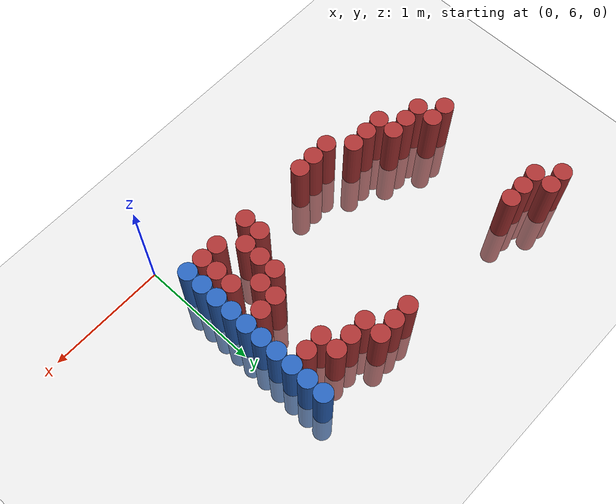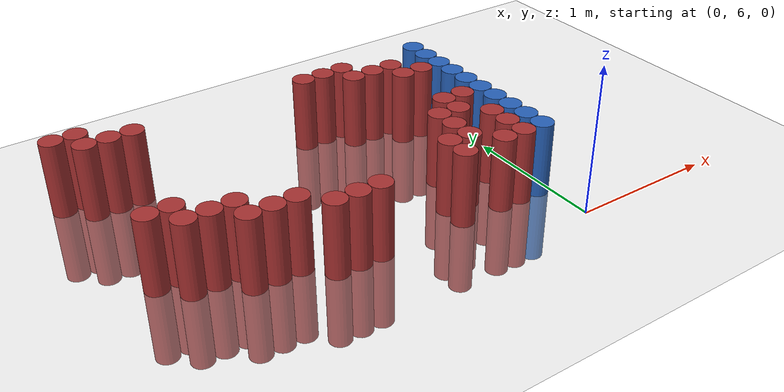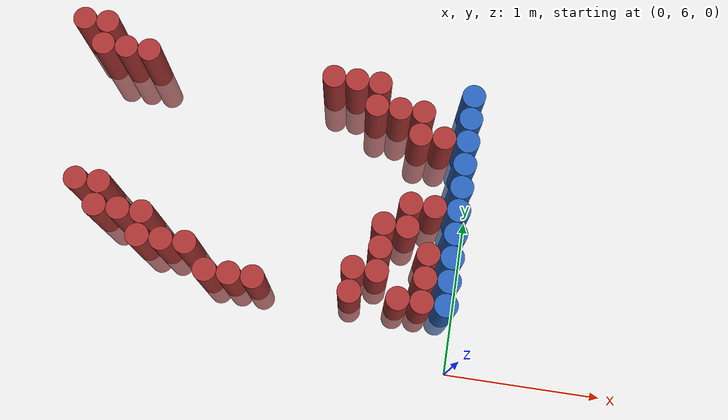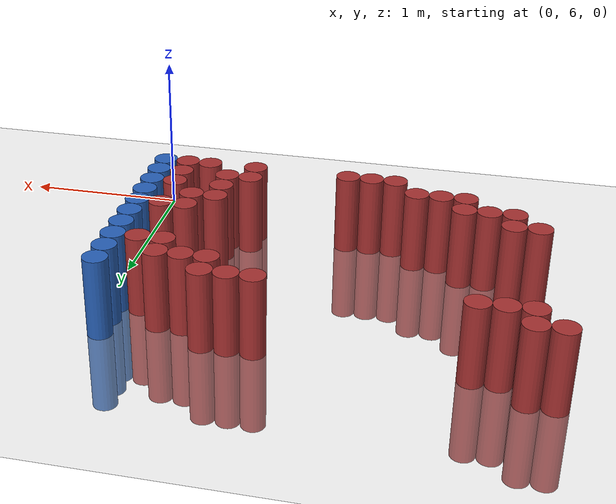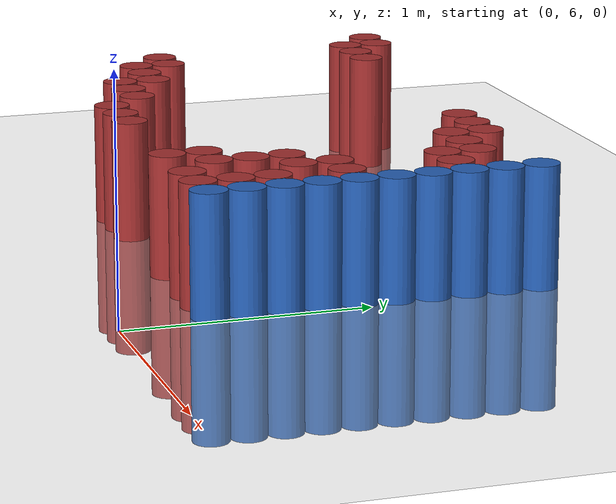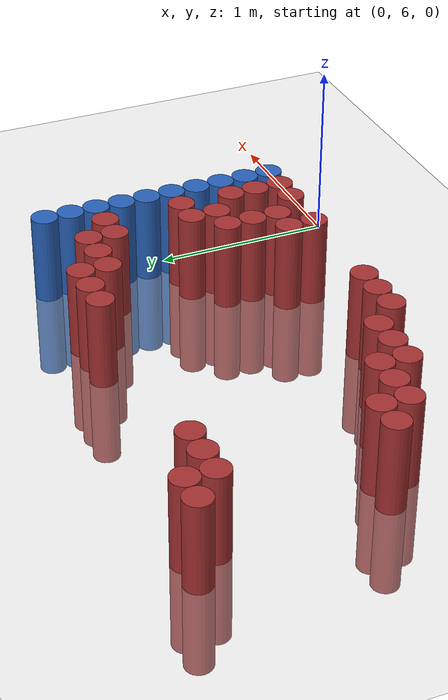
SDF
<sdf version="1.6">
 <world name="default">
  <model name="ground_plane">
   <static>1</static>
   <link name="link">
    <collision name="collision">
     <geometry><plane><normal>0 0 1</normal><size>100 100</size></plane></geometry>
     <surface><friction><ode><mu>100</mu><mu2>50</mu2></ode></friction></surface>
    </collision>
    <visual name="visual">
     <cast_shadows>0</cast_shadows>
     <geometry><plane><normal>0 0 1</normal><size>100 100</size></plane></geometry>
     <material>
      <script><uri>file://media/materials/scripts/gazebo.material</uri><name>Gazebo/Grey</name></script>
     </material>
    </visual>
   </link>
  </model>
  <model name="unit_cylinder_158">
   <static>1</static>
   <pose>-2.625000 7.875000 0.000000 0.000000 0.000000 0.000000</pose>
   <link name="link">
    <inertial>
     <mass>1</mass>
     <inertia><ixx>0.145833</ixx><ixy>0</ixy><ixz>0</ixz><iyy>0.145833</iyy><iyz>0</iyz><izz>0.125</izz></inertia>
    </inertial>
    <collision name="collision">
     <geometry><cylinder><radius>0.075000</radius><length>1</length></cylinder></geometry>
    </collision>
    <visual name="visual">
     <geometry><cylinder><radius>0.075000</radius><length>1</length></cylinder></geometry>
     <material>
      <ambient>0.648000 0.192000 0.192000 1</ambient>
      <diffuse>0.648000 0.192000 0.192000 1</diffuse>
     </material>
     <material>
      <script><name>Gazebo/Grey</name><uri>file://media/materials/scripts/gazebo.material</uri></script>
     </material>
    </visual>
   </link>
  </model>
  <model name="unit_cylinder_159">
   <static>1</static>
   <pose>-2.475000 6.825000 0.000000 0.000000 0.000000 0.000000</pose>
   <link name="link">
    <inertial>
     <mass>1</mass>
     <inertia><ixx>0.145833</ixx><ixy>0</ixy><ixz>0</ixz><iyy>0.145833</iyy><iyz>0</iyz><izz>0.125</izz></inertia>
    </inertial>
    <collision name="collision">
     <geometry><cylinder><radius>0.075000</radius><length>1</length></cylinder></geometry>
    </collision>
    <visual name="visual">
     <geometry><cylinder><radius>0.075000</radius><length>1</length></cylinder></geometry>
     <material>
      <ambient>0.648000 0.192000 0.192000 1</ambient>
      <diffuse>0.648000 0.192000 0.192000 1</diffuse>
     </material>
     <material>
      <script><name>Gazebo/Grey</name><uri>file://media/materials/scripts/gazebo.material</uri></script>
     </material>
    </visual>
   </link>
  </model>
  <model name="unit_cylinder_160">
   <static>1</static>
   <pose>-2.475000 7.725000 0.000000 0.000000 0.000000 0.000000</pose>
   <link name="link">
    <inertial>
     <mass>1</mass>
     <inertia><ixx>0.145833</ixx><ixy>0</ixy><ixz>0</ixz><iyy>0.145833</iyy><iyz>0</iyz><izz>0.125</izz></inertia>
    </inertial>
    <collision name="collision">
     <geometry><cylinder><radius>0.075000</radius><length>1</length></cylinder></geometry>
    </collision>
    <visual name="visual">
     <geometry><cylinder><radius>0.075000</radius><length>1</length></cylinder></geometry>
     <material>
      <ambient>0.648000 0.192000 0.192000 1</ambient>
      <diffuse>0.648000 0.192000 0.192000 1</diffuse>
     </material>
     <material>
      <script><name>Gazebo/Grey</name><uri>file://media/materials/scripts/gazebo.material</uri></script>
     </material>
    </visual>
   </link>
  </model>
  <model name="unit_cylinder_161">
   <static>1</static>
   <pose>-2.475000 7.875000 0.000000 0.000000 0.000000 0.000000</pose>
   <link name="link">
    <inertial>
     <mass>1</mass>
     <inertia><ixx>0.145833</ixx><ixy>0</ixy><ixz>0</ixz><iyy>0.145833</iyy><iyz>0</iyz><izz>0.125</izz></inertia>
    </inertial>
    <collision name="collision">
     <geometry><cylinder><radius>0.075000</radius><length>1</length></cylinder></geometry>
    </collision>
    <visual name="visual">
     <geometry><cylinder><radius>0.075000</radius><length>1</length></cylinder></geometry>
     <material>
      <ambient>0.648000 0.192000 0.192000 1</ambient>
      <diffuse>0.648000 0.192000 0.192000 1</diffuse>
     </material>
     <material>
      <script><name>Gazebo/Grey</name><uri>file://media/materials/scripts/gazebo.material</uri></script>
     </material>
    </visual>
   </link>
  </model>
  <model name="unit_cylinder_162">
   <static>1</static>
   <pose>-2.325000 6.675000 0.000000 0.000000 0.000000 0.000000</pose>
   <link name="link">
    <inertial>
     <mass>1</mass>
     <inertia><ixx>0.145833</ixx><ixy>0</ixy><ixz>0</ixz><iyy>0.145833</iyy><iyz>0</iyz><izz>0.125</izz></inertia>
    </inertial>
    <collision name="collision">
     <geometry><cylinder><radius>0.075000</radius><length>1</length></cylinder></geometry>
    </collision>
    <visual name="visual">
     <geometry><cylinder><radius>0.075000</radius><length>1</length></cylinder></geometry>
     <material>
      <ambient>0.648000 0.192000 0.192000 1</ambient>
      <diffuse>0.648000 0.192000 0.192000 1</diffuse>
     </material>
     <material>
      <script><name>Gazebo/Grey</name><uri>file://media/materials/scripts/gazebo.material</uri></script>
     </material>
    </visual>
   </link>
  </model>
  <model name="unit_cylinder_163">
   <static>1</static>
   <pose>-2.325000 6.825000 0.000000 0.000000 0.000000 0.000000</pose>
   <link name="link">
    <inertial>
     <mass>1</mass>
     <inertia><ixx>0.145833</ixx><ixy>0</ixy><ixz>0</ixz><iyy>0.145833</iyy><iyz>0</iyz><izz>0.125</izz></inertia>
    </inertial>
    <collision name="collision">
     <geometry><cylinder><radius>0.075000</radius><length>1</length></cylinder></geometry>
    </collision>
    <visual name="visual">
     <geometry><cylinder><radius>0.075000</radius><length>1</length></cylinder></geometry>
     <material>
      <ambient>0.648000 0.192000 0.192000 1</ambient>
      <diffuse>0.648000 0.192000 0.192000 1</diffuse>
     </material>
     <material>
      <script><name>Gazebo/Grey</name><uri>file://media/materials/scripts/gazebo.material</uri></script>
     </material>
    </visual>
   </link>
  </model>
  <model name="unit_cylinder_164">
   <static>1</static>
   <pose>-2.325000 7.725000 0.000000 0.000000 0.000000 0.000000</pose>
   <link name="link">
    <inertial>
     <mass>1</mass>
     <inertia><ixx>0.145833</ixx><ixy>0</ixy><ixz>0</ixz><iyy>0.145833</iyy><iyz>0</iyz><izz>0.125</izz></inertia>
    </inertial>
    <collision name="collision">
     <geometry><cylinder><radius>0.075000</radius><length>1</length></cylinder></geometry>
    </collision>
    <visual name="visual">
     <geometry><cylinder><radius>0.075000</radius><length>1</length></cylinder></geometry>
     <material>
      <ambient>0.648000 0.192000 0.192000 1</ambient>
      <diffuse>0.648000 0.192000 0.192000 1</diffuse>
     </material>
     <material>
      <script><name>Gazebo/Grey</name><uri>file://media/materials/scripts/gazebo.material</uri></script>
     </material>
    </visual>
   </link>
  </model>
  <model name="unit_cylinder_165">
   <static>1</static>
   <pose>-2.175000 6.675000 0.000000 0.000000 0.000000 0.000000</pose>
   <link name="link">
    <inertial>
     <mass>1</mass>
     <inertia><ixx>0.145833</ixx><ixy>0</ixy><ixz>0</ixz><iyy>0.145833</iyy><iyz>0</iyz><izz>0.125</izz></inertia>
    </inertial>
    <collision name="collision">
     <geometry><cylinder><radius>0.075000</radius><length>1</length></cylinder></geometry>
    </collision>
    <visual name="visual">
     <geometry><cylinder><radius>0.075000</radius><length>1</length></cylinder></geometry>
     <material>
      <ambient>0.648000 0.192000 0.192000 1</ambient>
      <diffuse>0.648000 0.192000 0.192000 1</diffuse>
     </material>
     <material>
      <script><name>Gazebo/Grey</name><uri>file://media/materials/scripts/gazebo.material</uri></script>
     </material>
    </visual>
   </link>
  </model>
  <model name="unit_cylinder_166">
   <static>1</static>
   <pose>-2.175000 7.725000 0.000000 0.000000 0.000000 0.000000</pose>
   <link name="link">
    <inertial>
     <mass>1</mass>
     <inertia><ixx>0.145833</ixx><ixy>0</ixy><ixz>0</ixz><iyy>0.145833</iyy><iyz>0</iyz><izz>0.125</izz></inertia>
    </inertial>
    <collision name="collision">
     <geometry><cylinder><radius>0.075000</radius><length>1</length></cylinder></geometry>
    </collision>
    <visual name="visual">
     <geometry><cylinder><radius>0.075000</radius><length>1</length></cylinder></geometry>
     <material>
      <ambient>0.648000 0.192000 0.192000 1</ambient>
      <diffuse>0.648000 0.192000 0.192000 1</diffuse>
     </material>
     <material>
      <script><name>Gazebo/Grey</name><uri>file://media/materials/scripts/gazebo.material</uri></script>
     </material>
    </visual>
   </link>
  </model>
  <model name="unit_cylinder_169">
   <static>1</static>
   <pose>-2.025000 6.525000 0.000000 0.000000 0.000000 0.000000</pose>
   <link name="link">
    <inertial>
     <mass>1</mass>
     <inertia><ixx>0.145833</ixx><ixy>0</ixy><ixz>0</ixz><iyy>0.145833</iyy><iyz>0</iyz><izz>0.125</izz></inertia>
    </inertial>
    <collision name="collision">
     <geometry><cylinder><radius>0.075000</radius><length>1</length></cylinder></geometry>
    </collision>
    <visual name="visual">
     <geometry><cylinder><radius>0.075000</radius><length>1</length></cylinder></geometry>
     <material>
      <ambient>0.648000 0.192000 0.192000 1</ambient>
      <diffuse>0.648000 0.192000 0.192000 1</diffuse>
     </material>
     <material>
      <script><name>Gazebo/Grey</name><uri>file://media/materials/scripts/gazebo.material</uri></script>
     </material>
    </visual>
   </link>
  </model>
  <model name="unit_cylinder_170">
   <static>1</static>
   <pose>-2.025000 6.675000 0.000000 0.000000 0.000000 0.000000</pose>
   <link name="link">
    <inertial>
     <mass>1</mass>
     <inertia><ixx>0.145833</ixx><ixy>0</ixy><ixz>0</ixz><iyy>0.145833</iyy><iyz>0</iyz><izz>0.125</izz></inertia>
    </inertial>
    <collision name="collision">
     <geometry><cylinder><radius>0.075000</radius><length>1</length></cylinder></geometry>
    </collision>
    <visual name="visual">
     <geometry><cylinder><radius>0.075000</radius><length>1</length></cylinder></geometry>
     <material>
      <ambient>0.648000 0.192000 0.192000 1</ambient>
      <diffuse>0.648000 0.192000 0.192000 1</diffuse>
     </material>
     <material>
      <script><name>Gazebo/Grey</name><uri>file://media/materials/scripts/gazebo.material</uri></script>
     </material>
    </visual>
   </link>
  </model>
  <model name="unit_cylinder_174">
   <static>1</static>
   <pose>-1.875000 6.525000 0.000000 0.000000 0.000000 0.000000</pose>
   <link name="link">
    <inertial>
     <mass>1</mass>
     <inertia><ixx>0.145833</ixx><ixy>0</ixy><ixz>0</ixz><iyy>0.145833</iyy><iyz>0</iyz><izz>0.125</izz></inertia>
    </inertial>
    <collision name="collision">
     <geometry><cylinder><radius>0.075000</radius><length>1</length></cylinder></geometry>
    </collision>
    <visual name="visual">
     <geometry><cylinder><radius>0.075000</radius><length>1</length></cylinder></geometry>
     <material>
      <ambient>0.648000 0.192000 0.192000 1</ambient>
      <diffuse>0.648000 0.192000 0.192000 1</diffuse>
     </material>
     <material>
      <script><name>Gazebo/Grey</name><uri>file://media/materials/scripts/gazebo.material</uri></script>
     </material>
    </visual>
   </link>
  </model>
  <model name="unit_cylinder_180">
   <static>1</static>
   <pose>-1.725000 6.525000 0.000000 0.000000 0.000000 0.000000</pose>
   <link name="link">
    <inertial>
     <mass>1</mass>
     <inertia><ixx>0.145833</ixx><ixy>0</ixy><ixz>0</ixz><iyy>0.145833</iyy><iyz>0</iyz><izz>0.125</izz></inertia>
    </inertial>
    <collision name="collision">
     <geometry><cylinder><radius>0.075000</radius><length>1</length></cylinder></geometry>
    </collision>
    <visual name="visual">
     <geometry><cylinder><radius>0.075000</radius><length>1</length></cylinder></geometry>
     <material>
      <ambient>0.648000 0.192000 0.192000 1</ambient>
      <diffuse>0.648000 0.192000 0.192000 1</diffuse>
     </material>
     <material>
      <script><name>Gazebo/Grey</name><uri>file://media/materials/scripts/gazebo.material</uri></script>
     </material>
    </visual>
   </link>
  </model>
  <model name="unit_cylinder_186">
   <static>1</static>
   <pose>-1.575000 6.375000 0.000000 0.000000 0.000000 0.000000</pose>
   <link name="link">
    <inertial>
     <mass>1</mass>
     <inertia><ixx>0.145833</ixx><ixy>0</ixy><ixz>0</ixz><iyy>0.145833</iyy><iyz>0</iyz><izz>0.125</izz></inertia>
    </inertial>
    <collision name="collision">
     <geometry><cylinder><radius>0.075000</radius><length>1</length></cylinder></geometry>
    </collision>
    <visual name="visual">
     <geometry><cylinder><radius>0.075000</radius><length>1</length></cylinder></geometry>
     <material>
      <ambient>0.648000 0.192000 0.192000 1</ambient>
      <diffuse>0.648000 0.192000 0.192000 1</diffuse>
     </material>
     <material>
      <script><name>Gazebo/Grey</name><uri>file://media/materials/scripts/gazebo.material</uri></script>
     </material>
    </visual>
   </link>
  </model>
  <model name="unit_cylinder_189">
   <static>1</static>
   <pose>-1.425000 6.375000 0.000000 0.000000 0.000000 0.000000</pose>
   <link name="link">
    <inertial>
     <mass>1</mass>
     <inertia><ixx>0.145833</ixx><ixy>0</ixy><ixz>0</ixz><iyy>0.145833</iyy><iyz>0</iyz><izz>0.125</izz></inertia>
    </inertial>
    <collision name="collision">
     <geometry><cylinder><radius>0.075000</radius><length>1</length></cylinder></geometry>
    </collision>
    <visual name="visual">
     <geometry><cylinder><radius>0.075000</radius><length>1</length></cylinder></geometry>
     <material>
      <ambient>0.648000 0.192000 0.192000 1</ambient>
      <diffuse>0.648000 0.192000 0.192000 1</diffuse>
     </material>
     <material>
      <script><name>Gazebo/Grey</name><uri>file://media/materials/scripts/gazebo.material</uri></script>
     </material>
    </visual>
   </link>
  </model>
  <model name="unit_cylinder_196">
   <static>1</static>
   <pose>-1.275000 6.375000 0.000000 0.000000 0.000000 0.000000</pose>
   <link name="link">
    <inertial>
     <mass>1</mass>
     <inertia><ixx>0.145833</ixx><ixy>0</ixy><ixz>0</ixz><iyy>0.145833</iyy><iyz>0</iyz><izz>0.125</izz></inertia>
    </inertial>
    <collision name="collision">
     <geometry><cylinder><radius>0.075000</radius><length>1</length></cylinder></geometry>
    </collision>
    <visual name="visual">
     <geometry><cylinder><radius>0.075000</radius><length>1</length></cylinder></geometry>
     <material>
      <ambient>0.648000 0.192000 0.192000 1</ambient>
      <diffuse>0.648000 0.192000 0.192000 1</diffuse>
     </material>
     <material>
      <script><name>Gazebo/Grey</name><uri>file://media/materials/scripts/gazebo.material</uri></script>
     </material>
    </visual>
   </link>
  </model>
  <model name="unit_cylinder_215">
   <static>1</static>
   <pose>-0.975000 7.725000 0.000000 0.000000 0.000000 0.000000</pose>
   <link name="link">
    <inertial>
     <mass>1</mass>
     <inertia><ixx>0.145833</ixx><ixy>0</ixy><ixz>0</ixz><iyy>0.145833</iyy><iyz>0</iyz><izz>0.125</izz></inertia>
    </inertial>
    <collision name="collision">
     <geometry><cylinder><radius>0.075000</radius><length>1</length></cylinder></geometry>
    </collision>
    <visual name="visual">
     <geometry><cylinder><radius>0.075000</radius><length>1</length></cylinder></geometry>
     <material>
      <ambient>0.648000 0.192000 0.192000 1</ambient>
      <diffuse>0.648000 0.192000 0.192000 1</diffuse>
     </material>
     <material>
      <script><name>Gazebo/Grey</name><uri>file://media/materials/scripts/gazebo.material</uri></script>
     </material>
    </visual>
   </link>
  </model>
  <model name="unit_cylinder_220">
   <static>1</static>
   <pose>-0.825000 7.725000 0.000000 0.000000 0.000000 0.000000</pose>
   <link name="link">
    <inertial>
     <mass>1</mass>
     <inertia><ixx>0.145833</ixx><ixy>0</ixy><ixz>0</ixz><iyy>0.145833</iyy><iyz>0</iyz><izz>0.125</izz></inertia>
    </inertial>
    <collision name="collision">
     <geometry><cylinder><radius>0.075000</radius><length>1</length></cylinder></geometry>
    </collision>
    <visual name="visual">
     <geometry><cylinder><radius>0.075000</radius><length>1</length></cylinder></geometry>
     <material>
      <ambient>0.648000 0.192000 0.192000 1</ambient>
      <diffuse>0.648000 0.192000 0.192000 1</diffuse>
     </material>
     <material>
      <script><name>Gazebo/Grey</name><uri>file://media/materials/scripts/gazebo.material</uri></script>
     </material>
    </visual>
   </link>
  </model>
  <model name="unit_cylinder_224">
   <static>1</static>
   <pose>-0.675000 6.375000 0.000000 0.000000 0.000000 0.000000</pose>
   <link name="link">
    <inertial>
     <mass>1</mass>
     <inertia><ixx>0.145833</ixx><ixy>0</ixy><ixz>0</ixz><iyy>0.145833</iyy><iyz>0</iyz><izz>0.125</izz></inertia>
    </inertial>
    <collision name="collision">
     <geometry><cylinder><radius>0.075000</radius><length>1</length></cylinder></geometry>
    </collision>
    <visual name="visual">
     <geometry><cylinder><radius>0.075000</radius><length>1</length></cylinder></geometry>
     <material>
      <ambient>0.648000 0.192000 0.192000 1</ambient>
      <diffuse>0.648000 0.192000 0.192000 1</diffuse>
     </material>
     <material>
      <script><name>Gazebo/Grey</name><uri>file://media/materials/scripts/gazebo.material</uri></script>
     </material>
    </visual>
   </link>
  </model>
  <model name="unit_cylinder_225">
   <static>1</static>
   <pose>-0.675000 6.525000 0.000000 0.000000 0.000000 0.000000</pose>
   <link name="link">
    <inertial>
     <mass>1</mass>
     <inertia><ixx>0.145833</ixx><ixy>0</ixy><ixz>0</ixz><iyy>0.145833</iyy><iyz>0</iyz><izz>0.125</izz></inertia>
    </inertial>
    <collision name="collision">
     <geometry><cylinder><radius>0.075000</radius><length>1</length></cylinder></geometry>
    </collision>
    <visual name="visual">
     <geometry><cylinder><radius>0.075000</radius><length>1</length></cylinder></geometry>
     <material>
      <ambient>0.648000 0.192000 0.192000 1</ambient>
      <diffuse>0.648000 0.192000 0.192000 1</diffuse>
     </material>
     <material>
      <script><name>Gazebo/Grey</name><uri>file://media/materials/scripts/gazebo.material</uri></script>
     </material>
    </visual>
   </link>
  </model>
  <model name="unit_cylinder_226">
   <static>1</static>
   <pose>-0.675000 7.575000 0.000000 0.000000 0.000000 0.000000</pose>
   <link name="link">
    <inertial>
     <mass>1</mass>
     <inertia><ixx>0.145833</ixx><ixy>0</ixy><ixz>0</ixz><iyy>0.145833</iyy><iyz>0</iyz><izz>0.125</izz></inertia>
    </inertial>
    <collision name="collision">
     <geometry><cylinder><radius>0.075000</radius><length>1</length></cylinder></geometry>
    </collision>
    <visual name="visual">
     <geometry><cylinder><radius>0.075000</radius><length>1</length></cylinder></geometry>
     <material>
      <ambient>0.648000 0.192000 0.192000 1</ambient>
      <diffuse>0.648000 0.192000 0.192000 1</diffuse>
     </material>
     <material>
      <script><name>Gazebo/Grey</name><uri>file://media/materials/scripts/gazebo.material</uri></script>
     </material>
    </visual>
   </link>
  </model>
  <model name="unit_cylinder_227">
   <static>1</static>
   <pose>-0.675000 7.725000 0.000000 0.000000 0.000000 0.000000</pose>
   <link name="link">
    <inertial>
     <mass>1</mass>
     <inertia><ixx>0.145833</ixx><ixy>0</ixy><ixz>0</ixz><iyy>0.145833</iyy><iyz>0</iyz><izz>0.125</izz></inertia>
    </inertial>
    <collision name="collision">
     <geometry><cylinder><radius>0.075000</radius><length>1</length></cylinder></geometry>
    </collision>
    <visual name="visual">
     <geometry><cylinder><radius>0.075000</radius><length>1</length></cylinder></geometry>
     <material>
      <ambient>0.648000 0.192000 0.192000 1</ambient>
      <diffuse>0.648000 0.192000 0.192000 1</diffuse>
     </material>
     <material>
      <script><name>Gazebo/Grey</name><uri>file://media/materials/scripts/gazebo.material</uri></script>
     </material>
    </visual>
   </link>
  </model>
  <model name="unit_cylinder_228">
   <static>1</static>
   <pose>-0.525000 6.525000 0.000000 0.000000 0.000000 0.000000</pose>
   <link name="link">
    <inertial>
     <mass>1</mass>
     <inertia><ixx>0.145833</ixx><ixy>0</ixy><ixz>0</ixz><iyy>0.145833</iyy><iyz>0</iyz><izz>0.125</izz></inertia>
    </inertial>
    <collision name="collision">
     <geometry><cylinder><radius>0.075000</radius><length>1</length></cylinder></geometry>
    </collision>
    <visual name="visual">
     <geometry><cylinder><radius>0.075000</radius><length>1</length></cylinder></geometry>
     <material>
      <ambient>0.648000 0.192000 0.192000 1</ambient>
      <diffuse>0.648000 0.192000 0.192000 1</diffuse>
     </material>
     <material>
      <script><name>Gazebo/Grey</name><uri>file://media/materials/scripts/gazebo.material</uri></script>
     </material>
    </visual>
   </link>
  </model>
  <model name="unit_cylinder_229">
   <static>1</static>
   <pose>-0.525000 6.675000 0.000000 0.000000 0.000000 0.000000</pose>
   <link name="link">
    <inertial>
     <mass>1</mass>
     <inertia><ixx>0.145833</ixx><ixy>0</ixy><ixz>0</ixz><iyy>0.145833</iyy><iyz>0</iyz><izz>0.125</izz></inertia>
    </inertial>
    <collision name="collision">
     <geometry><cylinder><radius>0.075000</radius><length>1</length></cylinder></geometry>
    </collision>
    <visual name="visual">
     <geometry><cylinder><radius>0.075000</radius><length>1</length></cylinder></geometry>
     <material>
      <ambient>0.648000 0.192000 0.192000 1</ambient>
      <diffuse>0.648000 0.192000 0.192000 1</diffuse>
     </material>
     <material>
      <script><name>Gazebo/Grey</name><uri>file://media/materials/scripts/gazebo.material</uri></script>
     </material>
    </visual>
   </link>
  </model>
  <model name="unit_cylinder_230">
   <static>1</static>
   <pose>-0.525000 6.825000 0.000000 0.000000 0.000000 0.000000</pose>
   <link name="link">
    <inertial>
     <mass>1</mass>
     <inertia><ixx>0.145833</ixx><ixy>0</ixy><ixz>0</ixz><iyy>0.145833</iyy><iyz>0</iyz><izz>0.125</izz></inertia>
    </inertial>
    <collision name="collision">
     <geometry><cylinder><radius>0.075000</radius><length>1</length></cylinder></geometry>
    </collision>
    <visual name="visual">
     <geometry><cylinder><radius>0.075000</radius><length>1</length></cylinder></geometry>
     <material>
      <ambient>0.648000 0.192000 0.192000 1</ambient>
      <diffuse>0.648000 0.192000 0.192000 1</diffuse>
     </material>
     <material>
      <script><name>Gazebo/Grey</name><uri>file://media/materials/scripts/gazebo.material</uri></script>
     </material>
    </visual>
   </link>
  </model>
  <model name="unit_cylinder_231">
   <static>1</static>
   <pose>-0.525000 7.575000 0.000000 0.000000 0.000000 0.000000</pose>
   <link name="link">
    <inertial>
     <mass>1</mass>
     <inertia><ixx>0.145833</ixx><ixy>0</ixy><ixz>0</ixz><iyy>0.145833</iyy><iyz>0</iyz><izz>0.125</izz></inertia>
    </inertial>
    <collision name="collision">
     <geometry><cylinder><radius>0.075000</radius><length>1</length></cylinder></geometry>
    </collision>
    <visual name="visual">
     <geometry><cylinder><radius>0.075000</radius><length>1</length></cylinder></geometry>
     <material>
      <ambient>0.648000 0.192000 0.192000 1</ambient>
      <diffuse>0.648000 0.192000 0.192000 1</diffuse>
     </material>
     <material>
      <script><name>Gazebo/Grey</name><uri>file://media/materials/scripts/gazebo.material</uri></script>
     </material>
    </visual>
   </link>
  </model>
  <model name="unit_cylinder_233">
   <static>1</static>
   <pose>-0.375000 6.375000 0.000000 0.000000 0.000000 0.000000</pose>
   <link name="link">
    <inertial>
     <mass>1</mass>
     <inertia><ixx>0.145833</ixx><ixy>0</ixy><ixz>0</ixz><iyy>0.145833</iyy><iyz>0</iyz><izz>0.125</izz></inertia>
    </inertial>
    <collision name="collision">
     <geometry><cylinder><radius>0.075000</radius><length>1</length></cylinder></geometry>
    </collision>
    <visual name="visual">
     <geometry><cylinder><radius>0.075000</radius><length>1</length></cylinder></geometry>
     <material>
      <ambient>0.648000 0.192000 0.192000 1</ambient>
      <diffuse>0.648000 0.192000 0.192000 1</diffuse>
     </material>
     <material>
      <script><name>Gazebo/Grey</name><uri>file://media/materials/scripts/gazebo.material</uri></script>
     </material>
    </visual>
   </link>
  </model>
  <model name="unit_cylinder_234">
   <static>1</static>
   <pose>-0.375000 6.825000 0.000000 0.000000 0.000000 0.000000</pose>
   <link name="link">
    <inertial>
     <mass>1</mass>
     <inertia><ixx>0.145833</ixx><ixy>0</ixy><ixz>0</ixz><iyy>0.145833</iyy><iyz>0</iyz><izz>0.125</izz></inertia>
    </inertial>
    <collision name="collision">
     <geometry><cylinder><radius>0.075000</radius><length>1</length></cylinder></geometry>
    </collision>
    <visual name="visual">
     <geometry><cylinder><radius>0.075000</radius><length>1</length></cylinder></geometry>
     <material>
      <ambient>0.648000 0.192000 0.192000 1</ambient>
      <diffuse>0.648000 0.192000 0.192000 1</diffuse>
     </material>
     <material>
      <script><name>Gazebo/Grey</name><uri>file://media/materials/scripts/gazebo.material</uri></script>
     </material>
    </visual>
   </link>
  </model>
  <model name="unit_cylinder_235">
   <static>1</static>
   <pose>-0.375000 6.975000 0.000000 0.000000 0.000000 0.000000</pose>
   <link name="link">
    <inertial>
     <mass>1</mass>
     <inertia><ixx>0.145833</ixx><ixy>0</ixy><ixz>0</ixz><iyy>0.145833</iyy><iyz>0</iyz><izz>0.125</izz></inertia>
    </inertial>
    <collision name="collision">
     <geometry><cylinder><radius>0.075000</radius><length>1</length></cylinder></geometry>
    </collision>
    <visual name="visual">
     <geometry><cylinder><radius>0.075000</radius><length>1</length></cylinder></geometry>
     <material>
      <ambient>0.648000 0.192000 0.192000 1</ambient>
      <diffuse>0.648000 0.192000 0.192000 1</diffuse>
     </material>
     <material>
      <script><name>Gazebo/Grey</name><uri>file://media/materials/scripts/gazebo.material</uri></script>
     </material>
    </visual>
   </link>
  </model>
  <model name="unit_cylinder_236">
   <static>1</static>
   <pose>-0.375000 7.425000 0.000000 0.000000 0.000000 0.000000</pose>
   <link name="link">
    <inertial>
     <mass>1</mass>
     <inertia><ixx>0.145833</ixx><ixy>0</ixy><ixz>0</ixz><iyy>0.145833</iyy><iyz>0</iyz><izz>0.125</izz></inertia>
    </inertial>
    <collision name="collision">
     <geometry><cylinder><radius>0.075000</radius><length>1</length></cylinder></geometry>
    </collision>
    <visual name="visual">
     <geometry><cylinder><radius>0.075000</radius><length>1</length></cylinder></geometry>
     <material>
      <ambient>0.648000 0.192000 0.192000 1</ambient>
      <diffuse>0.648000 0.192000 0.192000 1</diffuse>
     </material>
     <material>
      <script><name>Gazebo/Grey</name><uri>file://media/materials/scripts/gazebo.material</uri></script>
     </material>
    </visual>
   </link>
  </model>
  <model name="unit_cylinder_237">
   <static>1</static>
   <pose>-0.375000 7.575000 0.000000 0.000000 0.000000 0.000000</pose>
   <link name="link">
    <inertial>
     <mass>1</mass>
     <inertia><ixx>0.145833</ixx><ixy>0</ixy><ixz>0</ixz><iyy>0.145833</iyy><iyz>0</iyz><izz>0.125</izz></inertia>
    </inertial>
    <collision name="collision">
     <geometry><cylinder><radius>0.075000</radius><length>1</length></cylinder></geometry>
    </collision>
    <visual name="visual">
     <geometry><cylinder><radius>0.075000</radius><length>1</length></cylinder></geometry>
     <material>
      <ambient>0.648000 0.192000 0.192000 1</ambient>
      <diffuse>0.648000 0.192000 0.192000 1</diffuse>
     </material>
     <material>
      <script><name>Gazebo/Grey</name><uri>file://media/materials/scripts/gazebo.material</uri></script>
     </material>
    </visual>
   </link>
  </model>
  <model name="unit_cylinder_243">
   <static>1</static>
   <pose>-0.225000 6.375000 0.000000 0.000000 0.000000 0.000000</pose>
   <link name="link">
    <inertial>
     <mass>1</mass>
     <inertia><ixx>0.145833</ixx><ixy>0</ixy><ixz>0</ixz><iyy>0.145833</iyy><iyz>0</iyz><izz>0.125</izz></inertia>
    </inertial>
    <collision name="collision">
     <geometry><cylinder><radius>0.075000</radius><length>1</length></cylinder></geometry>
    </collision>
    <visual name="visual">
     <geometry><cylinder><radius>0.075000</radius><length>1</length></cylinder></geometry>
     <material>
      <ambient>0.648000 0.192000 0.192000 1</ambient>
      <diffuse>0.648000 0.192000 0.192000 1</diffuse>
     </material>
     <material>
      <script><name>Gazebo/Grey</name><uri>file://media/materials/scripts/gazebo.material</uri></script>
     </material>
    </visual>
   </link>
  </model>
  <model name="unit_cylinder_244">
   <static>1</static>
   <pose>-0.225000 6.525000 0.000000 0.000000 0.000000 0.000000</pose>
   <link name="link">
    <inertial>
     <mass>1</mass>
     <inertia><ixx>0.145833</ixx><ixy>0</ixy><ixz>0</ixz><iyy>0.145833</iyy><iyz>0</iyz><izz>0.125</izz></inertia>
    </inertial>
    <collision name="collision">
     <geometry><cylinder><radius>0.075000</radius><length>1</length></cylinder></geometry>
    </collision>
    <visual name="visual">
     <geometry><cylinder><radius>0.075000</radius><length>1</length></cylinder></geometry>
     <material>
      <ambient>0.648000 0.192000 0.192000 1</ambient>
      <diffuse>0.648000 0.192000 0.192000 1</diffuse>
     </material>
     <material>
      <script><name>Gazebo/Grey</name><uri>file://media/materials/scripts/gazebo.material</uri></script>
     </material>
    </visual>
   </link>
  </model>
  <model name="unit_cylinder_245">
   <static>1</static>
   <pose>-0.225000 6.675000 0.000000 0.000000 0.000000 0.000000</pose>
   <link name="link">
    <inertial>
     <mass>1</mass>
     <inertia><ixx>0.145833</ixx><ixy>0</ixy><ixz>0</ixz><iyy>0.145833</iyy><iyz>0</iyz><izz>0.125</izz></inertia>
    </inertial>
    <collision name="collision">
     <geometry><cylinder><radius>0.075000</radius><length>1</length></cylinder></geometry>
    </collision>
    <visual name="visual">
     <geometry><cylinder><radius>0.075000</radius><length>1</length></cylinder></geometry>
     <material>
      <ambient>0.648000 0.192000 0.192000 1</ambient>
      <diffuse>0.648000 0.192000 0.192000 1</diffuse>
     </material>
     <material>
      <script><name>Gazebo/Grey</name><uri>file://media/materials/scripts/gazebo.material</uri></script>
     </material>
    </visual>
   </link>
  </model>
  <model name="unit_cylinder_246">
   <static>1</static>
   <pose>-0.225000 6.975000 0.000000 0.000000 0.000000 0.000000</pose>
   <link name="link">
    <inertial>
     <mass>1</mass>
     <inertia><ixx>0.145833</ixx><ixy>0</ixy><ixz>0</ixz><iyy>0.145833</iyy><iyz>0</iyz><izz>0.125</izz></inertia>
    </inertial>
    <collision name="collision">
     <geometry><cylinder><radius>0.075000</radius><length>1</length></cylinder></geometry>
    </collision>
    <visual name="visual">
     <geometry><cylinder><radius>0.075000</radius><length>1</length></cylinder></geometry>
     <material>
      <ambient>0.648000 0.192000 0.192000 1</ambient>
      <diffuse>0.648000 0.192000 0.192000 1</diffuse>
     </material>
     <material>
      <script><name>Gazebo/Grey</name><uri>file://media/materials/scripts/gazebo.material</uri></script>
     </material>
    </visual>
   </link>
  </model>
  <model name="unit_cylinder_247">
   <static>1</static>
   <pose>-0.225000 7.425000 0.000000 0.000000 0.000000 0.000000</pose>
   <link name="link">
    <inertial>
     <mass>1</mass>
     <inertia><ixx>0.145833</ixx><ixy>0</ixy><ixz>0</ixz><iyy>0.145833</iyy><iyz>0</iyz><izz>0.125</izz></inertia>
    </inertial>
    <collision name="collision">
     <geometry><cylinder><radius>0.075000</radius><length>1</length></cylinder></geometry>
    </collision>
    <visual name="visual">
     <geometry><cylinder><radius>0.075000</radius><length>1</length></cylinder></geometry>
     <material>
      <ambient>0.648000 0.192000 0.192000 1</ambient>
      <diffuse>0.648000 0.192000 0.192000 1</diffuse>
     </material>
     <material>
      <script><name>Gazebo/Grey</name><uri>file://media/materials/scripts/gazebo.material</uri></script>
     </material>
    </visual>
   </link>
  </model>
  <model name="unit_cylinder_256">
   <static>1</static>
   <pose>-0.075000 6.375000 0.000000 0.000000 0.000000 0.000000</pose>
   <link name="link">
    <inertial>
     <mass>1</mass>
     <inertia><ixx>0.145833</ixx><ixy>0</ixy><ixz>0</ixz><iyy>0.145833</iyy><iyz>0</iyz><izz>0.125</izz></inertia>
    </inertial>
    <collision name="collision">
     <geometry><cylinder><radius>0.075000</radius><length>1</length></cylinder></geometry>
    </collision>
    <visual name="visual">
     <geometry><cylinder><radius>0.075000</radius><length>1</length></cylinder></geometry>
     <material>
      <ambient>0.152000 0.379000 0.720000 1</ambient>
      <diffuse>0.152000 0.379000 0.720000 1</diffuse>
     </material>
     <material>
      <script><name>Gazebo/Grey</name><uri>file://media/materials/scripts/gazebo.material</uri></script>
     </material>
    </visual>
   </link>
  </model>
  <model name="unit_cylinder_257">
   <static>1</static>
   <pose>-0.075000 6.525000 0.000000 0.000000 0.000000 0.000000</pose>
   <link name="link">
    <inertial>
     <mass>1</mass>
     <inertia><ixx>0.145833</ixx><ixy>0</ixy><ixz>0</ixz><iyy>0.145833</iyy><iyz>0</iyz><izz>0.125</izz></inertia>
    </inertial>
    <collision name="collision">
     <geometry><cylinder><radius>0.075000</radius><length>1</length></cylinder></geometry>
    </collision>
    <visual name="visual">
     <geometry><cylinder><radius>0.075000</radius><length>1</length></cylinder></geometry>
     <material>
      <ambient>0.152000 0.379000 0.720000 1</ambient>
      <diffuse>0.152000 0.379000 0.720000 1</diffuse>
     </material>
     <material>
      <script><name>Gazebo/Grey</name><uri>file://media/materials/scripts/gazebo.material</uri></script>
     </material>
    </visual>
   </link>
  </model>
  <model name="unit_cylinder_258">
   <static>1</static>
   <pose>-0.075000 6.675000 0.000000 0.000000 0.000000 0.000000</pose>
   <link name="link">
    <inertial>
     <mass>1</mass>
     <inertia><ixx>0.145833</ixx><ixy>0</ixy><ixz>0</ixz><iyy>0.145833</iyy><iyz>0</iyz><izz>0.125</izz></inertia>
    </inertial>
    <collision name="collision">
     <geometry><cylinder><radius>0.075000</radius><length>1</length></cylinder></geometry>
    </collision>
    <visual name="visual">
     <geometry><cylinder><radius>0.075000</radius><length>1</length></cylinder></geometry>
     <material>
      <ambient>0.152000 0.379000 0.720000 1</ambient>
      <diffuse>0.152000 0.379000 0.720000 1</diffuse>
     </material>
     <material>
      <script><name>Gazebo/Grey</name><uri>file://media/materials/scripts/gazebo.material</uri></script>
     </material>
    </visual>
   </link>
  </model>
  <model name="unit_cylinder_259">
   <static>1</static>
   <pose>-0.075000 6.825000 0.000000 0.000000 0.000000 0.000000</pose>
   <link name="link">
    <inertial>
     <mass>1</mass>
     <inertia><ixx>0.145833</ixx><ixy>0</ixy><ixz>0</ixz><iyy>0.145833</iyy><iyz>0</iyz><izz>0.125</izz></inertia>
    </inertial>
    <collision name="collision">
     <geometry><cylinder><radius>0.075000</radius><length>1</length></cylinder></geometry>
    </collision>
    <visual name="visual">
     <geometry><cylinder><radius>0.075000</radius><length>1</length></cylinder></geometry>
     <material>
      <ambient>0.152000 0.379000 0.720000 1</ambient>
      <diffuse>0.152000 0.379000 0.720000 1</diffuse>
     </material>
     <material>
      <script><name>Gazebo/Grey</name><uri>file://media/materials/scripts/gazebo.material</uri></script>
     </material>
    </visual>
   </link>
  </model>
  <model name="unit_cylinder_260">
   <static>1</static>
   <pose>-0.075000 6.975000 0.000000 0.000000 0.000000 0.000000</pose>
   <link name="link">
    <inertial>
     <mass>1</mass>
     <inertia><ixx>0.145833</ixx><ixy>0</ixy><ixz>0</ixz><iyy>0.145833</iyy><iyz>0</iyz><izz>0.125</izz></inertia>
    </inertial>
    <collision name="collision">
     <geometry><cylinder><radius>0.075000</radius><length>1</length></cylinder></geometry>
    </collision>
    <visual name="visual">
     <geometry><cylinder><radius>0.075000</radius><length>1</length></cylinder></geometry>
     <material>
      <ambient>0.152000 0.379000 0.720000 1</ambient>
      <diffuse>0.152000 0.379000 0.720000 1</diffuse>
     </material>
     <material>
      <script><name>Gazebo/Grey</name><uri>file://media/materials/scripts/gazebo.material</uri></script>
     </material>
    </visual>
   </link>
  </model>
  <model name="unit_cylinder_261">
   <static>1</static>
   <pose>-0.075000 7.125000 0.000000 0.000000 0.000000 0.000000</pose>
   <link name="link">
    <inertial>
     <mass>1</mass>
     <inertia><ixx>0.145833</ixx><ixy>0</ixy><ixz>0</ixz><iyy>0.145833</iyy><iyz>0</iyz><izz>0.125</izz></inertia>
    </inertial>
    <collision name="collision">
     <geometry><cylinder><radius>0.075000</radius><length>1</length></cylinder></geometry>
    </collision>
    <visual name="visual">
     <geometry><cylinder><radius>0.075000</radius><length>1</length></cylinder></geometry>
     <material>
      <ambient>0.152000 0.379000 0.720000 1</ambient>
      <diffuse>0.152000 0.379000 0.720000 1</diffuse>
     </material>
     <material>
      <script><name>Gazebo/Grey</name><uri>file://media/materials/scripts/gazebo.material</uri></script>
     </material>
    </visual>
   </link>
  </model>
  <model name="unit_cylinder_262">
   <static>1</static>
   <pose>-0.075000 7.275000 0.000000 0.000000 0.000000 0.000000</pose>
   <link name="link">
    <inertial>
     <mass>1</mass>
     <inertia><ixx>0.145833</ixx><ixy>0</ixy><ixz>0</ixz><iyy>0.145833</iyy><iyz>0</iyz><izz>0.125</izz></inertia>
    </inertial>
    <collision name="collision">
     <geometry><cylinder><radius>0.075000</radius><length>1</length></cylinder></geometry>
    </collision>
    <visual name="visual">
     <geometry><cylinder><radius>0.075000</radius><length>1</length></cylinder></geometry>
     <material>
      <ambient>0.152000 0.379000 0.720000 1</ambient>
      <diffuse>0.152000 0.379000 0.720000 1</diffuse>
     </material>
     <material>
      <script><name>Gazebo/Grey</name><uri>file://media/materials/scripts/gazebo.material</uri></script>
     </material>
    </visual>
   </link>
  </model>
  <model name="unit_cylinder_263">
   <static>1</static>
   <pose>-0.075000 7.425000 0.000000 0.000000 0.000000 0.000000</pose>
   <link name="link">
    <inertial>
     <mass>1</mass>
     <inertia><ixx>0.145833</ixx><ixy>0</ixy><ixz>0</ixz><iyy>0.145833</iyy><iyz>0</iyz><izz>0.125</izz></inertia>
    </inertial>
    <collision name="collision">
     <geometry><cylinder><radius>0.075000</radius><length>1</length></cylinder></geometry>
    </collision>
    <visual name="visual">
     <geometry><cylinder><radius>0.075000</radius><length>1</length></cylinder></geometry>
     <material>
      <ambient>0.152000 0.379000 0.720000 1</ambient>
      <diffuse>0.152000 0.379000 0.720000 1</diffuse>
     </material>
     <material>
      <script><name>Gazebo/Grey</name><uri>file://media/materials/scripts/gazebo.material</uri></script>
     </material>
    </visual>
   </link>
  </model>
  <model name="unit_cylinder_264">
   <static>1</static>
   <pose>-0.075000 7.575000 0.000000 0.000000 0.000000 0.000000</pose>
   <link name="link">
    <inertial>
     <mass>1</mass>
     <inertia><ixx>0.145833</ixx><ixy>0</ixy><ixz>0</ixz><iyy>0.145833</iyy><iyz>0</iyz><izz>0.125</izz></inertia>
    </inertial>
    <collision name="collision">
     <geometry><cylinder><radius>0.075000</radius><length>1</length></cylinder></geometry>
    </collision>
    <visual name="visual">
     <geometry><cylinder><radius>0.075000</radius><length>1</length></cylinder></geometry>
     <material>
      <ambient>0.152000 0.379000 0.720000 1</ambient>
      <diffuse>0.152000 0.379000 0.720000 1</diffuse>
     </material>
     <material>
      <script><name>Gazebo/Grey</name><uri>file://media/materials/scripts/gazebo.material</uri></script>
     </material>
    </visual>
   </link>
  </model>
  <model name="unit_cylinder_265">
   <static>1</static>
   <pose>-0.075000 7.725000 0.000000 0.000000 0.000000 0.000000</pose>
   <link name="link">
    <inertial>
     <mass>1</mass>
     <inertia><ixx>0.145833</ixx><ixy>0</ixy><ixz>0</ixz><iyy>0.145833</iyy><iyz>0</iyz><izz>0.125</izz></inertia>
    </inertial>
    <collision name="collision">
     <geometry><cylinder><radius>0.075000</radius><length>1</length></cylinder></geometry>
    </collision>
    <visual name="visual">
     <geometry><cylinder><radius>0.075000</radius><length>1</length></cylinder></geometry>
     <material>
      <ambient>0.152000 0.379000 0.720000 1</ambient>
      <diffuse>0.152000 0.379000 0.720000 1</diffuse>
     </material>
     <material>
      <script><name>Gazebo/Grey</name><uri>file://media/materials/scripts/gazebo.material</uri></script>
     </material>
    </visual>
   </link>
  </model>
 </world>
</sdf>
